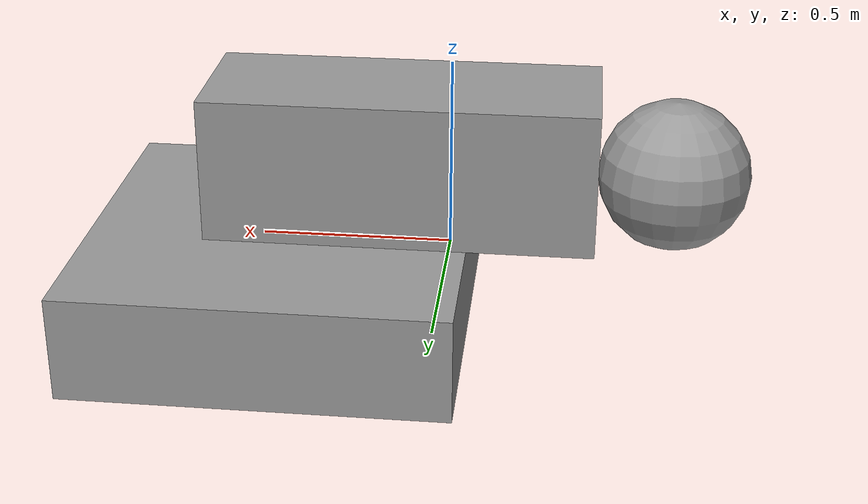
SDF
<?xml version='1.0'?>
<sdf version='1.6'>
    <model name='cambot'>
        <link name="world"></link>
        <joint name="weld" type="fixed">
            <parent>world</parent>
            <child>link_0</child> <!-- put here the name of the base link -->
        </joint> <!-- close the joint tag -->

        <link name='link_0'>
            <inertial>
                <mass>0.278078</mass>
                <inertia>
                    <ixx>0.0249655</ixx>
                    <ixy>0</ixy>
                    <ixz>0</ixz>
                    <iyy>0.0249656</iyy>
                    <iyz>0</iyz>
                    <izz>0.0463462</izz>
                </inertia>
                <pose>0 0 0 0 -0 0</pose>
            </inertial>
            <pose>0.449643 0 -0.109672 0 -0 0</pose>
            <self_collide>0</self_collide>
            <enable_wind>0</enable_wind>
            <kinematic>0</kinematic>
            <visual name='visual'>
                <pose>0 0 0 0 -0 0</pose>
                <geometry>
                    <box>
                        <size>1 0.999998 0.278122</size>
                    </box>
                </geometry>
                <material>
                    <lighting>1</lighting>
                    <script>
                        <uri>file://media/materials/scripts/gazebo.material</uri>
                        <name>Gazebo/Grey</name>
                    </script>
                    <shader type='pixel'/>
                    <emissive>0 0 0 1</emissive>
                </material>
                <transparency>0</transparency>
                <cast_shadows>1</cast_shadows>
            </visual>
            <collision name='collision'>
                <laser_retro>0</laser_retro>
                <max_contacts>10</max_contacts>
                <pose>0 0 0 0 -0 0</pose>
                <geometry>
                    <box>
                        <size>1 0.999998 0.278122</size>
                    </box>
                </geometry>
                <surface>
                    <friction>
                        <ode>
                            <mu>1</mu>
                            <mu2>1</mu2>
                            <fdir1>0 0 0</fdir1>
                            <slip1>0</slip1>
                            <slip2>0</slip2>
                        </ode>
                        <torsional>
                            <coefficient>1</coefficient>
                            <patch_radius>0</patch_radius>
                            <surface_radius>0</surface_radius>
                            <use_patch_radius>1</use_patch_radius>
                            <ode>
                                <slip>0</slip>
                            </ode>
                        </torsional>
                    </friction>
                    <bounce>
                        <restitution_coefficient>0</restitution_coefficient>
                        <threshold>1e+06</threshold>
                    </bounce>
                    <contact>
                        <collide_without_contact>0</collide_without_contact>
                        <collide_without_contact_bitmask>1</collide_without_contact_bitmask>
                        <collide_bitmask>1</collide_bitmask>
                        <ode>
                            <soft_cfm>0</soft_cfm>
                            <soft_erp>0.2</soft_erp>
                            <kp>1e+13</kp>
                            <kd>1</kd>
                            <max_vel>0.01</max_vel>
                            <min_depth>0</min_depth>
                        </ode>
                        <bullet>
                            <split_impulse>1</split_impulse>
                            <split_impulse_penetration_threshold>-0.01</split_impulse_penetration_threshold>
                            <soft_cfm>0</soft_cfm>
                            <soft_erp>0.2</soft_erp>
                            <kp>1e+13</kp>
                            <kd>1</kd>
                        </bullet>
                    </contact>
                </surface>
            </collision>
        </link>
        <link name='link_1'>
            <inertial>
                <mass>0.141448</mass>
                <inertia>
                    <ixx>0.0033228</ixx>
                    <ixy>0</ixy>
                    <ixz>0</ixz>
                    <iyy>0.0135239</iyy>
                    <iyz>0</iyz>
                    <izz>0.0134944</izz>
                </inertia>
                <pose>0 0 0 0 -0 0</pose>
            </inertial>
            <pose>0.123368 0 0.248336 0 -0 0</pose>
            <self_collide>0</self_collide>
            <enable_wind>0</enable_wind>
            <kinematic>0</kinematic>
            <visual name='visual'>
                <pose>0 0 0 0 -0 0</pose>
                <geometry>
                    <box>
                        <size>1.00256 0.373758 0.377095</size>
                    </box>
                </geometry>
                <material>
                    <lighting>1</lighting>
                    <script>
                        <uri>file://media/materials/scripts/gazebo.material</uri>
                        <name>Gazebo/Grey</name>
                    </script>
                    <shader type='pixel'/>
                    <emissive>0 0 0 1</emissive>
                </material>
                <transparency>0</transparency>
                <cast_shadows>1</cast_shadows>
            </visual>
            <collision name='collision'>
                <laser_retro>0</laser_retro>
                <max_contacts>10</max_contacts>
                <pose>0 0 0 0 -0 0</pose>
                <geometry>
                    <box>
                        <size>1.00256 0.373758 0.377095</size>
                    </box>
                </geometry>
                <surface>
                    <friction>
                        <ode>
                            <mu>1</mu>
                            <mu2>1</mu2>
                            <fdir1>0 0 0</fdir1>
                            <slip1>0</slip1>
                            <slip2>0</slip2>
                        </ode>
                        <torsional>
                            <coefficient>1</coefficient>
                            <patch_radius>0</patch_radius>
                            <surface_radius>0</surface_radius>
                            <use_patch_radius>1</use_patch_radius>
                            <ode>
                                <slip>0</slip>
                            </ode>
                        </torsional>
                    </friction>
                    <bounce>
                        <restitution_coefficient>0</restitution_coefficient>
                        <threshold>1e+06</threshold>
                    </bounce>
                    <contact>
                        <collide_without_contact>0</collide_without_contact>
                        <collide_without_contact_bitmask>1</collide_without_contact_bitmask>
                        <collide_bitmask>1</collide_bitmask>
                        <ode>
                            <soft_cfm>0</soft_cfm>
                            <soft_erp>0.2</soft_erp>
                            <kp>1e+13</kp>
                            <kd>1</kd>
                            <max_vel>0.01</max_vel>
                            <min_depth>0</min_depth>
                        </ode>
                        <bullet>
                            <split_impulse>1</split_impulse>
                            <split_impulse_penetration_threshold>-0.01</split_impulse_penetration_threshold>
                            <soft_cfm>0</soft_cfm>
                            <soft_erp>0.2</soft_erp>
                            <kp>1e+13</kp>
                            <kd>1</kd>
                        </bullet>
                    </contact>
                </surface>
            </collision>
        </link>
        <link name='link_2'>
            <inertial>
                <mass>0.0594117</mass>
                <inertia>
                    <ixx>0.000904565</ixx>
                    <ixy>0</ixy>
                    <ixz>0</ixz>
                    <iyy>0.000904565</iyy>
                    <iyz>0</iyz>
                    <izz>0.000904565</izz>
                </inertia>
                <pose>0 0 0 0 -0 0</pose>
            </inertial>
            <pose>-0.573012 0 0.218875 0 -0 0</pose>
            <self_collide>0</self_collide>
            <enable_wind>0</enable_wind>
            <kinematic>0</kinematic>
            <visual name='visual'>
                <pose>0 0 0 0 -0 0</pose>
                <geometry>
                    <sphere>
                        <radius>0.195098</radius>
                    </sphere>
                </geometry>
                <material>
                    <lighting>1</lighting>
                    <script>
                        <uri>file://media/materials/scripts/gazebo.material</uri>
                        <name>Gazebo/Grey</name>
                    </script>
                    <shader type='pixel'/>
                    <emissive>0 0 0 1</emissive>
                </material>
                <transparency>0</transparency>
                <cast_shadows>1</cast_shadows>
            </visual>
            <collision name='collision'>
                <laser_retro>0</laser_retro>
                <max_contacts>10</max_contacts>
                <pose>0 0 0 0 -0 0</pose>
                <geometry>
                    <sphere>
                        <radius>0.195098</radius>
                    </sphere>
                </geometry>
                <surface>
                    <friction>
                        <ode>
                            <mu>1</mu>
                            <mu2>1</mu2>
                            <fdir1>0 0 0</fdir1>
                            <slip1>0</slip1>
                            <slip2>0</slip2>
                        </ode>
                        <torsional>
                            <coefficient>1</coefficient>
                            <patch_radius>0</patch_radius>
                            <surface_radius>0</surface_radius>
                            <use_patch_radius>1</use_patch_radius>
                            <ode>
                                <slip>0</slip>
                            </ode>
                        </torsional>
                    </friction>
                    <bounce>
                        <restitution_coefficient>0</restitution_coefficient>
                        <threshold>1e+06</threshold>
                    </bounce>
                    <contact>
                        <collide_without_contact>0</collide_without_contact>
                        <collide_without_contact_bitmask>1</collide_without_contact_bitmask>
                        <collide_bitmask>1</collide_bitmask>
                        <ode>
                            <soft_cfm>0</soft_cfm>
                            <soft_erp>0.2</soft_erp>
                            <kp>1e+13</kp>
                            <kd>1</kd>
                            <max_vel>0.01</max_vel>
                            <min_depth>0</min_depth>
                        </ode>
                        <bullet>
                            <split_impulse>1</split_impulse>
                            <split_impulse_penetration_threshold>-0.01</split_impulse_penetration_threshold>
                            <soft_cfm>0</soft_cfm>
                            <soft_erp>0.2</soft_erp>
                            <kp>1e+13</kp>
                            <kd>1</kd>
                        </bullet>
                    </contact>
                </surface>
            </collision>
        </link>
        <joint name='link_0_JOINT_8' type='revolute'>
            <parent>link_0</parent>
            <child>link_1</child>
            <pose>0.33 0 0 0 -0 0</pose>
            <axis>
                <xyz>0 0 1</xyz>
                <limit>
                    <lower>-1.79769e+308</lower>
                    <upper>1.79769e+308</upper>
                    <effort>-1</effort>
                    <velocity>-1</velocity>
                </limit>
                <dynamics>
                    <spring_reference>0</spring_reference>
                    <spring_stiffness>0</spring_stiffness>
                    <damping>0</damping>
                    <friction>0</friction>
                </dynamics>
            </axis>
            <physics>
                <ode>
                    <limit>
                        <cfm>0</cfm>
                        <erp>0.2</erp>
                    </limit>
                    <suspension>
                        <cfm>0</cfm>
                        <erp>0.2</erp>
                    </suspension>
                </ode>
            </physics>
        </joint>
        <joint name='link_1_JOINT_6' type='fixed'>
            <parent>link_1</parent>
            <child>link_2</child>
            <pose>0 0 0 0 -0 0</pose>
            <physics>
                <ode>
                    <limit>
                        <cfm>0</cfm>
                        <erp>0.2</erp>
                    </limit>
                    <suspension>
                        <cfm>0</cfm>
                        <erp>0.2</erp>
                    </suspension>
                </ode>
            </physics>
        </joint>
        <static>0</static>
        <allow_auto_disable>1</allow_auto_disable>
    </model>
</sdf>
